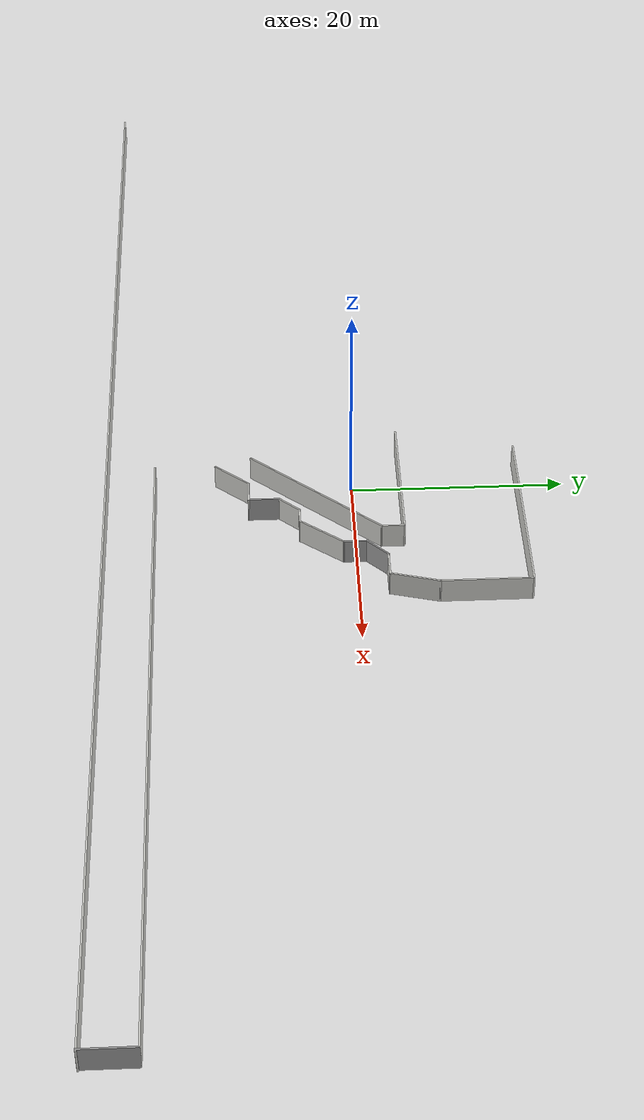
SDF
<sdf version="1.7">
 <model name="MIT_Tunnel_mod">
  <link name="Wall_12">
   <pose>15.6663 11.3569 0 0 0 -1.5708</pose>
   <visual name="Wall_12_Visual">
    <pose>0 0 1.25 0 -0 0</pose>
    <geometry><box><size>8.5 0.15 2.5</size></box></geometry>
    <material>
     <script><uri>file://media/materials/scripts/gazebo.material</uri><name>Gazebo/CeilingTiled</name></script>
     <ambient>1 1 1 1</ambient>
     <shader type="pixel"/>
    </material>
   </visual>
   <collision name="Wall_12_Collision">
    <pose>0 0 1.25 0 -0 0</pose>
    <geometry><box><size>8.5 0.15 2.5</size></box></geometry>
    <surface>
     <friction>
      <ode><mu>1</mu><mu2>1</mu2><fdir1>0 0 0</fdir1><slip1>0</slip1><slip2>0</slip2></ode>
      <torsional>
       <coefficient>1</coefficient>
       <patch_radius>0</patch_radius>
       <surface_radius>0</surface_radius>
       <use_patch_radius>1</use_patch_radius>
       <ode><slip>0</slip></ode>
      </torsional>
     </friction>
     <bounce><restitution_coefficient>0</restitution_coefficient><threshold>1e+06</threshold></bounce>
     <contact>
      <collide_without_contact>0</collide_without_contact>
      <collide_without_contact_bitmask>1</collide_without_contact_bitmask>
      <collide_bitmask>1</collide_bitmask>
      <ode>
       <soft_cfm>0</soft_cfm>
       <soft_erp>0.2</soft_erp>
       <kp>1e+13</kp>
       <kd>1</kd>
       <max_vel>0.01</max_vel>
       <min_depth>0</min_depth>
      </ode>
      <bullet>
       <split_impulse>1</split_impulse>
       <split_impulse_penetration_threshold>-0.01</split_impulse_penetration_threshold>
       <soft_cfm>0</soft_cfm>
       <soft_erp>0.2</soft_erp>
       <kp>1e+13</kp>
       <kd>1</kd>
      </bullet>
     </contact>
    </surface>
   </collision>
  </link>
  <link name="Wall_15">
   <pose>6.37605 15.5572 0 0 -0 0</pose>
   <visual name="Wall_15_Visual">
    <pose>0 0 1.25 0 -0 0</pose>
    <geometry><box><size>18.75 0.15 2.5</size></box></geometry>
    <material>
     <script><uri>file://media/materials/scripts/gazebo.material</uri><name>Gazebo/CeilingTiled</name></script>
     <ambient>1 1 1 1</ambient>
     <shader type="pixel"/>
    </material>
   </visual>
   <collision name="Wall_15_Collision">
    <pose>0 0 1.25 0 -0 0</pose>
    <geometry><box><size>18.75 0.15 2.5</size></box></geometry>
    <surface>
     <friction>
      <ode><mu>1</mu><mu2>1</mu2><fdir1>0 0 0</fdir1><slip1>0</slip1><slip2>0</slip2></ode>
      <torsional>
       <coefficient>1</coefficient>
       <patch_radius>0</patch_radius>
       <surface_radius>0</surface_radius>
       <use_patch_radius>1</use_patch_radius>
       <ode><slip>0</slip></ode>
      </torsional>
     </friction>
     <bounce><restitution_coefficient>0</restitution_coefficient><threshold>1e+06</threshold></bounce>
     <contact>
      <collide_without_contact>0</collide_without_contact>
      <collide_without_contact_bitmask>1</collide_without_contact_bitmask>
      <collide_bitmask>1</collide_bitmask>
      <ode>
       <soft_cfm>0</soft_cfm>
       <soft_erp>0.2</soft_erp>
       <kp>1e+13</kp>
       <kd>1</kd>
       <max_vel>0.01</max_vel>
       <min_depth>0</min_depth>
      </ode>
      <bullet>
       <split_impulse>1</split_impulse>
       <split_impulse_penetration_threshold>-0.01</split_impulse_penetration_threshold>
       <soft_cfm>0</soft_cfm>
       <soft_erp>0.2</soft_erp>
       <kp>1e+13</kp>
       <kd>1</kd>
      </bullet>
     </contact>
    </surface>
   </collision>
  </link>
  <link name="Wall_17">
   <pose>15.0799 4.96726 0 0 0 -1.8326</pose>
   <visual name="Wall_17_Visual">
    <pose>0 0 1.25 0 -0 0</pose>
    <geometry><box><size>4.75 0.15 2.5</size></box></geometry>
    <material>
     <script><uri>file://media/materials/scripts/gazebo.material</uri><name>Gazebo/CeilingTiled</name></script>
     <ambient>1 1 1 1</ambient>
     <shader type="pixel"/>
    </material>
   </visual>
   <collision name="Wall_17_Collision">
    <pose>0 0 1.25 0 -0 0</pose>
    <geometry><box><size>4.75 0.15 2.5</size></box></geometry>
    <surface>
     <friction>
      <ode><mu>1</mu><mu2>1</mu2><fdir1>0 0 0</fdir1><slip1>0</slip1><slip2>0</slip2></ode>
      <torsional>
       <coefficient>1</coefficient>
       <patch_radius>0</patch_radius>
       <surface_radius>0</surface_radius>
       <use_patch_radius>1</use_patch_radius>
       <ode><slip>0</slip></ode>
      </torsional>
     </friction>
     <bounce><restitution_coefficient>0</restitution_coefficient><threshold>1e+06</threshold></bounce>
     <contact>
      <collide_without_contact>0</collide_without_contact>
      <collide_without_contact_bitmask>1</collide_without_contact_bitmask>
      <collide_bitmask>1</collide_bitmask>
      <ode>
       <soft_cfm>0</soft_cfm>
       <soft_erp>0.2</soft_erp>
       <kp>1e+13</kp>
       <kd>1</kd>
       <max_vel>0.01</max_vel>
       <min_depth>0</min_depth>
      </ode>
      <bullet>
       <split_impulse>1</split_impulse>
       <split_impulse_penetration_threshold>-0.01</split_impulse_penetration_threshold>
       <soft_cfm>0</soft_cfm>
       <soft_erp>0.2</soft_erp>
       <kp>1e+13</kp>
       <kd>1</kd>
      </bullet>
     </contact>
    </surface>
   </collision>
  </link>
  <link name="Wall_18">
   <pose>13.1846 2.74563 0 0 -0 3.14159</pose>
   <visual name="Wall_18_Visual">
    <pose>0 0 1.25 0 -0 0</pose>
    <geometry><box><size>2.75 0.15 2.5</size></box></geometry>
    <material>
     <script><uri>file://media/materials/scripts/gazebo.material</uri><name>Gazebo/CeilingTiled</name></script>
     <ambient>1 1 1 1</ambient>
     <shader type="pixel"/>
    </material>
   </visual>
   <collision name="Wall_18_Collision">
    <pose>0 0 1.25 0 -0 0</pose>
    <geometry><box><size>2.75 0.15 2.5</size></box></geometry>
    <surface>
     <friction>
      <ode><mu>1</mu><mu2>1</mu2><fdir1>0 0 0</fdir1><slip1>0</slip1><slip2>0</slip2></ode>
      <torsional>
       <coefficient>1</coefficient>
       <patch_radius>0</patch_radius>
       <surface_radius>0</surface_radius>
       <use_patch_radius>1</use_patch_radius>
       <ode><slip>0</slip></ode>
      </torsional>
     </friction>
     <bounce><restitution_coefficient>0</restitution_coefficient><threshold>1e+06</threshold></bounce>
     <contact>
      <collide_without_contact>0</collide_without_contact>
      <collide_without_contact_bitmask>1</collide_without_contact_bitmask>
      <collide_bitmask>1</collide_bitmask>
      <ode>
       <soft_cfm>0</soft_cfm>
       <soft_erp>0.2</soft_erp>
       <kp>1e+13</kp>
       <kd>1</kd>
       <max_vel>0.01</max_vel>
       <min_depth>0</min_depth>
      </ode>
      <bullet>
       <split_impulse>1</split_impulse>
       <split_impulse_penetration_threshold>-0.01</split_impulse_penetration_threshold>
       <soft_cfm>0</soft_cfm>
       <soft_erp>0.2</soft_erp>
       <kp>1e+13</kp>
       <kd>1</kd>
      </bullet>
     </contact>
    </surface>
   </collision>
  </link>
  <link name="Wall_19">
   <pose>10.9654 1.82639 0 0 0 -2.35619</pose>
   <visual name="Wall_19_Visual">
    <pose>0 0 1.25 0 -0 0</pose>
    <geometry><box><size>2.75 0.15 2.5</size></box></geometry>
    <material>
     <script><uri>file://media/materials/scripts/gazebo.material</uri><name>Gazebo/Grey</name></script>
     <ambient>1 1 1 1</ambient>
     <shader type="pixel"/>
    </material>
   </visual>
   <collision name="Wall_19_Collision">
    <pose>0 0 1.25 0 -0 0</pose>
    <geometry><box><size>2.75 0.15 2.5</size></box></geometry>
    <surface>
     <friction>
      <ode><mu>1</mu><mu2>1</mu2><fdir1>0 0 0</fdir1><slip1>0</slip1><slip2>0</slip2></ode>
      <torsional>
       <coefficient>1</coefficient>
       <patch_radius>0</patch_radius>
       <surface_radius>0</surface_radius>
       <use_patch_radius>1</use_patch_radius>
       <ode><slip>0</slip></ode>
      </torsional>
     </friction>
     <bounce><restitution_coefficient>0</restitution_coefficient><threshold>1e+06</threshold></bounce>
     <contact>
      <collide_without_contact>0</collide_without_contact>
      <collide_without_contact_bitmask>1</collide_without_contact_bitmask>
      <collide_bitmask>1</collide_bitmask>
      <ode>
       <soft_cfm>0</soft_cfm>
       <soft_erp>0.2</soft_erp>
       <kp>1e+13</kp>
       <kd>1</kd>
       <max_vel>0.01</max_vel>
       <min_depth>0</min_depth>
      </ode>
      <bullet>
       <split_impulse>1</split_impulse>
       <split_impulse_penetration_threshold>-0.01</split_impulse_penetration_threshold>
       <soft_cfm>0</soft_cfm>
       <soft_erp>0.2</soft_erp>
       <kp>1e+13</kp>
       <kd>1</kd>
      </bullet>
     </contact>
    </surface>
   </collision>
  </link>
  <link name="Wall_20">
   <pose>10.0461 -0.142849 0 0 0 -1.5708</pose>
   <visual name="Wall_20_Visual">
    <pose>0 0 1.25 0 -0 0</pose>
    <geometry><box><size>2.25 0.15 2.5</size></box></geometry>
    <material>
     <script><uri>file://media/materials/scripts/gazebo.material</uri><name>Gazebo/Grey</name></script>
     <ambient>1 1 1 1</ambient>
     <shader type="pixel"/>
    </material>
   </visual>
   <collision name="Wall_20_Collision">
    <pose>0 0 1.25 0 -0 0</pose>
    <geometry><box><size>2.25 0.15 2.5</size></box></geometry>
    <surface>
     <friction>
      <ode><mu>1</mu><mu2>1</mu2><fdir1>0 0 0</fdir1><slip1>0</slip1><slip2>0</slip2></ode>
      <torsional>
       <coefficient>1</coefficient>
       <patch_radius>0</patch_radius>
       <surface_radius>0</surface_radius>
       <use_patch_radius>1</use_patch_radius>
       <ode><slip>0</slip></ode>
      </torsional>
     </friction>
     <bounce><restitution_coefficient>0</restitution_coefficient><threshold>1e+06</threshold></bounce>
     <contact>
      <collide_without_contact>0</collide_without_contact>
      <collide_without_contact_bitmask>1</collide_without_contact_bitmask>
      <collide_bitmask>1</collide_bitmask>
      <ode>
       <soft_cfm>0</soft_cfm>
       <soft_erp>0.2</soft_erp>
       <kp>1e+13</kp>
       <kd>1</kd>
       <max_vel>0.01</max_vel>
       <min_depth>0</min_depth>
      </ode>
      <bullet>
       <split_impulse>1</split_impulse>
       <split_impulse_penetration_threshold>-0.01</split_impulse_penetration_threshold>
       <soft_cfm>0</soft_cfm>
       <soft_erp>0.2</soft_erp>
       <kp>1e+13</kp>
       <kd>1</kd>
      </bullet>
     </contact>
    </surface>
   </collision>
  </link>
  <link name="Wall_22">
   <pose>8.53852 -3.14869 0 0 0 -2.22749</pose>
   <visual name="Wall_22_Visual">
    <pose>0 0 1.25 0 -0 0</pose>
    <geometry><box><size>5.08891 0.15 2.5</size></box></geometry>
    <material>
     <script><uri>file://media/materials/scripts/gazebo.material</uri><name>Gazebo/CeilingTiled</name></script>
     <ambient>1 1 1 1</ambient>
     <shader type="pixel"/>
    </material>
   </visual>
   <collision name="Wall_22_Collision">
    <pose>0 0 1.25 0 -0 0</pose>
    <geometry><box><size>5.08891 0.15 2.5</size></box></geometry>
    <surface>
     <friction>
      <ode><mu>1</mu><mu2>1</mu2><fdir1>0 0 0</fdir1><slip1>0</slip1><slip2>0</slip2></ode>
      <torsional>
       <coefficient>1</coefficient>
       <patch_radius>0</patch_radius>
       <surface_radius>0</surface_radius>
       <use_patch_radius>1</use_patch_radius>
       <ode><slip>0</slip></ode>
      </torsional>
     </friction>
     <bounce><restitution_coefficient>0</restitution_coefficient><threshold>1e+06</threshold></bounce>
     <contact>
      <collide_without_contact>0</collide_without_contact>
      <collide_without_contact_bitmask>1</collide_without_contact_bitmask>
      <collide_bitmask>1</collide_bitmask>
      <ode>
       <soft_cfm>0</soft_cfm>
       <soft_erp>0.2</soft_erp>
       <kp>1e+13</kp>
       <kd>1</kd>
       <max_vel>0.01</max_vel>
       <min_depth>0</min_depth>
      </ode>
      <bullet>
       <split_impulse>1</split_impulse>
       <split_impulse_penetration_threshold>-0.01</split_impulse_penetration_threshold>
       <soft_cfm>0</soft_cfm>
       <soft_erp>0.2</soft_erp>
       <kp>1e+13</kp>
       <kd>1</kd>
      </bullet>
     </contact>
    </surface>
   </collision>
  </link>
  <link name="Wall_23">
   <pose>6.23091 -5.10454 0 0 -0 3.14159</pose>
   <visual name="Wall_23_Visual">
    <pose>0 0 1.25 0 -0 0</pose>
    <geometry><box><size>1.75 0.15 2.5</size></box></geometry>
    <material>
     <script><uri>file://media/materials/scripts/gazebo.material</uri><name>Gazebo/CeilingTiled</name></script>
     <ambient>1 1 1 1</ambient>
     <shader type="pixel"/>
    </material>
   </visual>
   <collision name="Wall_23_Collision">
    <pose>0 0 1.25 0 -0 0</pose>
    <geometry><box><size>1.75 0.15 2.5</size></box></geometry>
    <surface>
     <friction>
      <ode><mu>1</mu><mu2>1</mu2><fdir1>0 0 0</fdir1><slip1>0</slip1><slip2>0</slip2></ode>
      <torsional>
       <coefficient>1</coefficient>
       <patch_radius>0</patch_radius>
       <surface_radius>0</surface_radius>
       <use_patch_radius>1</use_patch_radius>
       <ode><slip>0</slip></ode>
      </torsional>
     </friction>
     <bounce><restitution_coefficient>0</restitution_coefficient><threshold>1e+06</threshold></bounce>
     <contact>
      <collide_without_contact>0</collide_without_contact>
      <collide_without_contact_bitmask>1</collide_without_contact_bitmask>
      <collide_bitmask>1</collide_bitmask>
      <ode>
       <soft_cfm>0</soft_cfm>
       <soft_erp>0.2</soft_erp>
       <kp>1e+13</kp>
       <kd>1</kd>
       <max_vel>0.01</max_vel>
       <min_depth>0</min_depth>
      </ode>
      <bullet>
       <split_impulse>1</split_impulse>
       <split_impulse_penetration_threshold>-0.01</split_impulse_penetration_threshold>
       <soft_cfm>0</soft_cfm>
       <soft_erp>0.2</soft_erp>
       <kp>1e+13</kp>
       <kd>1</kd>
      </bullet>
     </contact>
    </surface>
   </collision>
  </link>
  <link name="Wall_24">
   <pose>4.6163 -6.01417 0 0 0 -2.30114</pose>
   <visual name="Wall_24_Visual">
    <pose>0 0 1.25 0 -0 0</pose>
    <geometry><box><size>2.59216 0.15 2.5</size></box></geometry>
    <material>
     <script><uri>file://media/materials/scripts/gazebo.material</uri><name>Gazebo/CeilingTiled</name></script>
     <ambient>1 1 1 1</ambient>
     <shader type="pixel"/>
    </material>
   </visual>
   <collision name="Wall_24_Collision">
    <pose>0 0 1.25 0 -0 0</pose>
    <geometry><box><size>2.59216 0.15 2.5</size></box></geometry>
    <surface>
     <friction>
      <ode><mu>1</mu><mu2>1</mu2><fdir1>0 0 0</fdir1><slip1>0</slip1><slip2>0</slip2></ode>
      <torsional>
       <coefficient>1</coefficient>
       <patch_radius>0</patch_radius>
       <surface_radius>0</surface_radius>
       <use_patch_radius>1</use_patch_radius>
       <ode><slip>0</slip></ode>
      </torsional>
     </friction>
     <bounce><restitution_coefficient>0</restitution_coefficient><threshold>1e+06</threshold></bounce>
     <contact>
      <collide_without_contact>0</collide_without_contact>
      <collide_without_contact_bitmask>1</collide_without_contact_bitmask>
      <collide_bitmask>1</collide_bitmask>
      <ode>
       <soft_cfm>0</soft_cfm>
       <soft_erp>0.2</soft_erp>
       <kp>1e+13</kp>
       <kd>1</kd>
       <max_vel>0.01</max_vel>
       <min_depth>0</min_depth>
      </ode>
      <bullet>
       <split_impulse>1</split_impulse>
       <split_impulse_penetration_threshold>-0.01</split_impulse_penetration_threshold>
       <soft_cfm>0</soft_cfm>
       <soft_erp>0.2</soft_erp>
       <kp>1e+13</kp>
       <kd>1</kd>
      </bullet>
     </contact>
    </surface>
   </collision>
  </link>
  <link name="Wall_26">
   <pose>3.80168 -8.34882 0 0 0 -1.5708</pose>
   <visual name="Wall_26_Visual">
    <pose>0 0 1.25 0 -0 0</pose>
    <geometry><box><size>3 0.15 2.5</size></box></geometry>
    <material>
     <script><uri>file://media/materials/scripts/gazebo.material</uri><name>Gazebo/Grey</name></script>
     <ambient>1 1 1 1</ambient>
     <shader type="pixel"/>
    </material>
   </visual>
   <collision name="Wall_26_Collision">
    <pose>0 0 1.25 0 -0 0</pose>
    <geometry><box><size>3 0.15 2.5</size></box></geometry>
    <surface>
     <friction>
      <ode><mu>1</mu><mu2>1</mu2><fdir1>0 0 0</fdir1><slip1>0</slip1><slip2>0</slip2></ode>
      <torsional>
       <coefficient>1</coefficient>
       <patch_radius>0</patch_radius>
       <surface_radius>0</surface_radius>
       <use_patch_radius>1</use_patch_radius>
       <ode><slip>0</slip></ode>
      </torsional>
     </friction>
     <bounce><restitution_coefficient>0</restitution_coefficient><threshold>1e+06</threshold></bounce>
     <contact>
      <collide_without_contact>0</collide_without_contact>
      <collide_without_contact_bitmask>1</collide_without_contact_bitmask>
      <collide_bitmask>1</collide_bitmask>
      <ode>
       <soft_cfm>0</soft_cfm>
       <soft_erp>0.2</soft_erp>
       <kp>1e+13</kp>
       <kd>1</kd>
       <max_vel>0.01</max_vel>
       <min_depth>0</min_depth>
      </ode>
      <bullet>
       <split_impulse>1</split_impulse>
       <split_impulse_penetration_threshold>-0.01</split_impulse_penetration_threshold>
       <soft_cfm>0</soft_cfm>
       <soft_erp>0.2</soft_erp>
       <kp>1e+13</kp>
       <kd>1</kd>
      </bullet>
     </contact>
    </surface>
   </collision>
  </link>
  <link name="Wall_27">
   <pose>2.62668 -9.77382 0 0 -0 3.14159</pose>
   <visual name="Wall_27_Visual">
    <pose>0 0 1.25 0 -0 0</pose>
    <geometry><box><size>2.5 0.15 2.5</size></box></geometry>
    <material>
     <script><uri>file://media/materials/scripts/gazebo.material</uri><name>Gazebo/CeilingTiled</name></script>
     <ambient>1 1 1 1</ambient>
     <shader type="pixel"/>
    </material>
   </visual>
   <collision name="Wall_27_Collision">
    <pose>0 0 1.25 0 -0 0</pose>
    <geometry><box><size>2.5 0.15 2.5</size></box></geometry>
    <surface>
     <friction>
      <ode><mu>1</mu><mu2>1</mu2><fdir1>0 0 0</fdir1><slip1>0</slip1><slip2>0</slip2></ode>
      <torsional>
       <coefficient>1</coefficient>
       <patch_radius>0</patch_radius>
       <surface_radius>0</surface_radius>
       <use_patch_radius>1</use_patch_radius>
       <ode><slip>0</slip></ode>
      </torsional>
     </friction>
     <bounce><restitution_coefficient>0</restitution_coefficient><threshold>1e+06</threshold></bounce>
     <contact>
      <collide_without_contact>0</collide_without_contact>
      <collide_without_contact_bitmask>1</collide_without_contact_bitmask>
      <collide_bitmask>1</collide_bitmask>
      <ode>
       <soft_cfm>0</soft_cfm>
       <soft_erp>0.2</soft_erp>
       <kp>1e+13</kp>
       <kd>1</kd>
       <max_vel>0.01</max_vel>
       <min_depth>0</min_depth>
      </ode>
      <bullet>
       <split_impulse>1</split_impulse>
       <split_impulse_penetration_threshold>-0.01</split_impulse_penetration_threshold>
       <soft_cfm>0</soft_cfm>
       <soft_erp>0.2</soft_erp>
       <kp>1e+13</kp>
       <kd>1</kd>
      </bullet>
     </contact>
    </surface>
   </collision>
  </link>
  <link name="Wall_28">
   <pose>0.152007 -11.2946 0 0 0 -2.27796</pose>
   <visual name="Wall_28_Visual">
    <pose>0 0 1.25 0 -0 0</pose>
    <geometry><box><size>4.15096 0.15 2.5</size></box></geometry>
    <material>
     <script><uri>file://media/materials/scripts/gazebo.material</uri><name>Gazebo/CeilingTiled</name></script>
     <ambient>1 1 1 1</ambient>
     <shader type="pixel"/>
    </material>
   </visual>
   <collision name="Wall_28_Collision">
    <pose>0 0 1.25 0 -0 0</pose>
    <geometry><box><size>4.15096 0.15 2.5</size></box></geometry>
    <surface>
     <friction>
      <ode><mu>1</mu><mu2>1</mu2><fdir1>0 0 0</fdir1><slip1>0</slip1><slip2>0</slip2></ode>
      <torsional>
       <coefficient>1</coefficient>
       <patch_radius>0</patch_radius>
       <surface_radius>0</surface_radius>
       <use_patch_radius>1</use_patch_radius>
       <ode><slip>0</slip></ode>
      </torsional>
     </friction>
     <bounce><restitution_coefficient>0</restitution_coefficient><threshold>1e+06</threshold></bounce>
     <contact>
      <collide_without_contact>0</collide_without_contact>
      <collide_without_contact_bitmask>1</collide_without_contact_bitmask>
      <collide_bitmask>1</collide_bitmask>
      <ode>
       <soft_cfm>0</soft_cfm>
       <soft_erp>0.2</soft_erp>
       <kp>1e+13</kp>
       <kd>1</kd>
       <max_vel>0.01</max_vel>
       <min_depth>0</min_depth>
      </ode>
      <bullet>
       <split_impulse>1</split_impulse>
       <split_impulse_penetration_threshold>-0.01</split_impulse_penetration_threshold>
       <soft_cfm>0</soft_cfm>
       <soft_erp>0.2</soft_erp>
       <kp>1e+13</kp>
       <kd>1</kd>
      </bullet>
     </contact>
    </surface>
   </collision>
  </link>
  <link name="Wall_30">
   <pose>31.5103 -18.5427 0 0 -0 0</pose>
   <visual name="Wall_30_Visual">
    <pose>0 0 1.25 0 -0 0</pose>
    <geometry><box><size>65.5 0.15 2.5</size></box></geometry>
    <material>
     <script><uri>file://media/materials/scripts/gazebo.material</uri><name>Gazebo/CeilingTiled</name></script>
     <ambient>1 1 1 1</ambient>
     <shader type="pixel"/>
    </material>
   </visual>
   <collision name="Wall_30_Collision">
    <pose>0 0 1.25 0 -0 0</pose>
    <geometry><box><size>65.5 0.15 2.5</size></box></geometry>
    <surface>
     <friction>
      <ode><mu>1</mu><mu2>1</mu2><fdir1>0 0 0</fdir1><slip1>0</slip1><slip2>0</slip2></ode>
      <torsional>
       <coefficient>1</coefficient>
       <patch_radius>0</patch_radius>
       <surface_radius>0</surface_radius>
       <use_patch_radius>1</use_patch_radius>
       <ode><slip>0</slip></ode>
      </torsional>
     </friction>
     <bounce><restitution_coefficient>0</restitution_coefficient><threshold>1e+06</threshold></bounce>
     <contact>
      <collide_without_contact>0</collide_without_contact>
      <collide_without_contact_bitmask>1</collide_without_contact_bitmask>
      <collide_bitmask>1</collide_bitmask>
      <ode>
       <soft_cfm>0</soft_cfm>
       <soft_erp>0.2</soft_erp>
       <kp>1e+13</kp>
       <kd>1</kd>
       <max_vel>0.01</max_vel>
       <min_depth>0</min_depth>
      </ode>
      <bullet>
       <split_impulse>1</split_impulse>
       <split_impulse_penetration_threshold>-0.01</split_impulse_penetration_threshold>
       <soft_cfm>0</soft_cfm>
       <soft_erp>0.2</soft_erp>
       <kp>1e+13</kp>
       <kd>1</kd>
      </bullet>
     </contact>
    </surface>
   </collision>
  </link>
  <link name="Wall_32">
   <pose>64.1853 -20.8427 0 0 0 -1.5708</pose>
   <visual name="Wall_32_Visual">
    <pose>0 0 1.25 0 -0 0</pose>
    <geometry><box><size>4.75 0.15 2.5</size></box></geometry>
    <material>
     <script><uri>file://media/materials/scripts/gazebo.material</uri><name>Gazebo/Grey</name></script>
     <ambient>1 1 1 1</ambient>
     <shader type="pixel"/>
    </material>
   </visual>
   <collision name="Wall_32_Collision">
    <pose>0 0 1.25 0 -0 0</pose>
    <geometry><box><size>4.75 0.15 2.5</size></box></geometry>
    <surface>
     <friction>
      <ode><mu>1</mu><mu2>1</mu2><fdir1>0 0 0</fdir1><slip1>0</slip1><slip2>0</slip2></ode>
      <torsional>
       <coefficient>1</coefficient>
       <patch_radius>0</patch_radius>
       <surface_radius>0</surface_radius>
       <use_patch_radius>1</use_patch_radius>
       <ode><slip>0</slip></ode>
      </torsional>
     </friction>
     <bounce><restitution_coefficient>0</restitution_coefficient><threshold>1e+06</threshold></bounce>
     <contact>
      <collide_without_contact>0</collide_without_contact>
      <collide_without_contact_bitmask>1</collide_without_contact_bitmask>
      <collide_bitmask>1</collide_bitmask>
      <ode>
       <soft_cfm>0</soft_cfm>
       <soft_erp>0.2</soft_erp>
       <kp>1e+13</kp>
       <kd>1</kd>
       <max_vel>0.01</max_vel>
       <min_depth>0</min_depth>
      </ode>
      <bullet>
       <split_impulse>1</split_impulse>
       <split_impulse_penetration_threshold>-0.01</split_impulse_penetration_threshold>
       <soft_cfm>0</soft_cfm>
       <soft_erp>0.2</soft_erp>
       <kp>1e+13</kp>
       <kd>1</kd>
      </bullet>
     </contact>
    </surface>
   </collision>
  </link>
  <link name="Wall_35">
   <pose>1e-06 -23.1189 0 0 -0 0</pose>
   <visual name="Wall_35_Visual">
    <pose>0 0 1.25 0 -0 0</pose>
    <geometry><box><size>128.75 0.15 2.5</size></box></geometry>
    <material>
     <script><uri>file://media/materials/scripts/gazebo.material</uri><name>Gazebo/CeilingTiled</name></script>
     <ambient>1 1 1 1</ambient>
     <shader type="pixel"/>
    </material>
   </visual>
   <collision name="Wall_35_Collision">
    <pose>0 0 1.25 0 -0 0</pose>
    <geometry><box><size>128.75 0.15 2.5</size></box></geometry>
    <surface>
     <friction>
      <ode><mu>1</mu><mu2>1</mu2><fdir1>0 0 0</fdir1><slip1>0</slip1><slip2>0</slip2></ode>
      <torsional>
       <coefficient>1</coefficient>
       <patch_radius>0</patch_radius>
       <surface_radius>0</surface_radius>
       <use_patch_radius>1</use_patch_radius>
       <ode><slip>0</slip></ode>
      </torsional>
     </friction>
     <bounce><restitution_coefficient>0</restitution_coefficient><threshold>1e+06</threshold></bounce>
     <contact>
      <collide_without_contact>0</collide_without_contact>
      <collide_without_contact_bitmask>1</collide_without_contact_bitmask>
      <collide_bitmask>1</collide_bitmask>
      <ode>
       <soft_cfm>0</soft_cfm>
       <soft_erp>0.2</soft_erp>
       <kp>1e+13</kp>
       <kd>1</kd>
       <max_vel>0.01</max_vel>
       <min_depth>0</min_depth>
      </ode>
      <bullet>
       <split_impulse>1</split_impulse>
       <split_impulse_penetration_threshold>-0.01</split_impulse_penetration_threshold>
       <soft_cfm>0</soft_cfm>
       <soft_erp>0.2</soft_erp>
       <kp>1e+13</kp>
       <kd>1</kd>
      </bullet>
     </contact>
    </surface>
   </collision>
  </link>
  <link name="Wall_45">
   <pose>1.23255 4.47384 0 0 -0 0</pose>
   <visual name="Wall_45_Visual">
    <pose>0 0 1.25 0 -0 0</pose>
    <geometry><box><size>13.75 0.15 2.5</size></box></geometry>
    <material>
     <script><uri>file://media/materials/scripts/gazebo.material</uri><name>Gazebo/CeilingTiled</name></script>
     <ambient>1 1 1 1</ambient>
     <shader type="pixel"/>
    </material>
   </visual>
   <collision name="Wall_45_Collision">
    <pose>0 0 1.25 0 -0 0</pose>
    <geometry><box><size>13.75 0.15 2.5</size></box></geometry>
    <surface>
     <friction>
      <ode><mu>1</mu><mu2>1</mu2><fdir1>0 0 0</fdir1><slip1>0</slip1><slip2>0</slip2></ode>
      <torsional>
       <coefficient>1</coefficient>
       <patch_radius>0</patch_radius>
       <surface_radius>0</surface_radius>
       <use_patch_radius>1</use_patch_radius>
       <ode><slip>0</slip></ode>
      </torsional>
     </friction>
     <bounce><restitution_coefficient>0</restitution_coefficient><threshold>1e+06</threshold></bounce>
     <contact>
      <collide_without_contact>0</collide_without_contact>
      <collide_without_contact_bitmask>1</collide_without_contact_bitmask>
      <collide_bitmask>1</collide_bitmask>
      <ode>
       <soft_cfm>0</soft_cfm>
       <soft_erp>0.2</soft_erp>
       <kp>1e+13</kp>
       <kd>1</kd>
       <max_vel>0.01</max_vel>
       <min_depth>0</min_depth>
      </ode>
      <bullet>
       <split_impulse>1</split_impulse>
       <split_impulse_penetration_threshold>-0.01</split_impulse_penetration_threshold>
       <soft_cfm>0</soft_cfm>
       <soft_erp>0.2</soft_erp>
       <kp>1e+13</kp>
       <kd>1</kd>
      </bullet>
     </contact>
    </surface>
   </collision>
  </link>
  <link name="Wall_46">
   <pose>8.03255 3.42384 0 0 0 -1.5708</pose>
   <visual name="Wall_46_Visual">
    <pose>0 0 1.25 0 -0 0</pose>
    <geometry><box><size>2.25 0.15 2.5</size></box></geometry>
    <material>
     <script><uri>file://media/materials/scripts/gazebo.material</uri><name>Gazebo/CeilingTiled</name></script>
     <ambient>1 1 1 1</ambient>
     <shader type="pixel"/>
    </material>
   </visual>
   <collision name="Wall_46_Collision">
    <pose>0 0 1.25 0 -0 0</pose>
    <geometry><box><size>2.25 0.15 2.5</size></box></geometry>
    <surface>
     <friction>
      <ode><mu>1</mu><mu2>1</mu2><fdir1>0 0 0</fdir1><slip1>0</slip1><slip2>0</slip2></ode>
      <torsional>
       <coefficient>1</coefficient>
       <patch_radius>0</patch_radius>
       <surface_radius>0</surface_radius>
       <use_patch_radius>1</use_patch_radius>
       <ode><slip>0</slip></ode>
      </torsional>
     </friction>
     <bounce><restitution_coefficient>0</restitution_coefficient><threshold>1e+06</threshold></bounce>
     <contact>
      <collide_without_contact>0</collide_without_contact>
      <collide_without_contact_bitmask>1</collide_without_contact_bitmask>
      <collide_bitmask>1</collide_bitmask>
      <ode>
       <soft_cfm>0</soft_cfm>
       <soft_erp>0.2</soft_erp>
       <kp>1e+13</kp>
       <kd>1</kd>
       <max_vel>0.01</max_vel>
       <min_depth>0</min_depth>
      </ode>
      <bullet>
       <split_impulse>1</split_impulse>
       <split_impulse_penetration_threshold>-0.01</split_impulse_penetration_threshold>
       <soft_cfm>0</soft_cfm>
       <soft_erp>0.2</soft_erp>
       <kp>1e+13</kp>
       <kd>1</kd>
      </bullet>
     </contact>
    </surface>
   </collision>
  </link>
  <link name="Wall_47">
   <pose>2.89068 -3.54071 0 0 0 -2.28642</pose>
   <visual name="Wall_47_Visual">
    <pose>0 0 1.25 0 -0 0</pose>
    <geometry><box><size>15.8243 0.15 2.5</size></box></geometry>
    <material>
     <script><uri>file://media/materials/scripts/gazebo.material</uri><name>Gazebo/CeilingTiled</name></script>
     <ambient>1 1 1 1</ambient>
     <shader type="pixel"/>
    </material>
   </visual>
   <collision name="Wall_47_Collision">
    <pose>0 0 1.25 0 -0 0</pose>
    <geometry><box><size>15.8243 0.15 2.5</size></box></geometry>
    <surface>
     <friction>
      <ode><mu>1</mu><mu2>1</mu2><fdir1>0 0 0</fdir1><slip1>0</slip1><slip2>0</slip2></ode>
      <torsional>
       <coefficient>1</coefficient>
       <patch_radius>0</patch_radius>
       <surface_radius>0</surface_radius>
       <use_patch_radius>1</use_patch_radius>
       <ode><slip>0</slip></ode>
      </torsional>
     </friction>
     <bounce><restitution_coefficient>0</restitution_coefficient><threshold>1e+06</threshold></bounce>
     <contact>
      <collide_without_contact>0</collide_without_contact>
      <collide_without_contact_bitmask>1</collide_without_contact_bitmask>
      <collide_bitmask>1</collide_bitmask>
      <ode>
       <soft_cfm>0</soft_cfm>
       <soft_erp>0.2</soft_erp>
       <kp>1e+13</kp>
       <kd>1</kd>
       <max_vel>0.01</max_vel>
       <min_depth>0</min_depth>
      </ode>
      <bullet>
       <split_impulse>1</split_impulse>
       <split_impulse_penetration_threshold>-0.01</split_impulse_penetration_threshold>
       <soft_cfm>0</soft_cfm>
       <soft_erp>0.2</soft_erp>
       <kp>1e+13</kp>
       <kd>1</kd>
      </bullet>
     </contact>
    </surface>
   </collision>
  </link>
  <static>1</static>
 </model>
</sdf>
